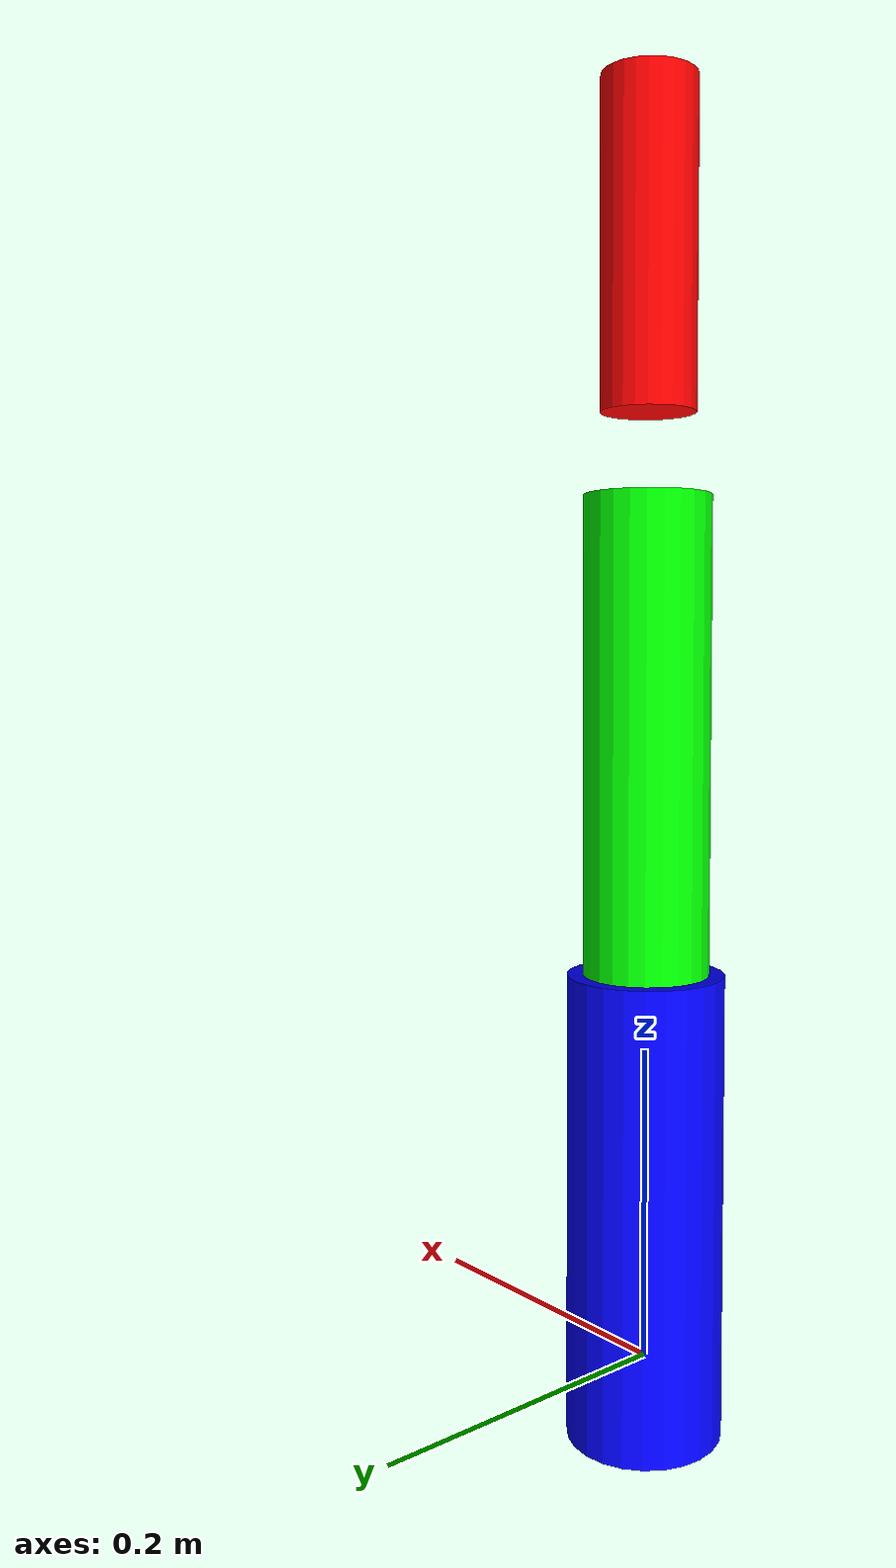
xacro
<?xml version="1.0"?>
<robot name="puma_3dof" xmlns:xacro="http://ros.org/wiki/xacro">

    <!-- COLOR -->
    <material name="green">
        <color rgba="0 1 0 1" />
    </material>

    <material name="blue">
        <color rgba="0 0 1 1"/>
    </material>

    <material name="red">
        <color rgba="1 0 0 1"/>
    </material>

    <!-- 기본 베이스 링크 -->
    <link name="base_link"/>

    <!-- Shoulder Joint -->
    <joint name="joint1" type="revolute">
        <parent link="base_link"/>
        <child link="link1"/>
        <origin xyz="0 0 0.1" rpy="0 0 0"/>
        <axis xyz="0 0 1"/>
        <limit effort="10.0" lower="-1.57" upper="1.57" velocity="1.0"/>
    </joint>
    <link name="link1">
        <visual>
            <geometry>
                <cylinder radius="0.05" length="0.3"/>
            </geometry>
            <material name="blue"/>
        </visual>
    </link>

    <!-- Elbow Joint -->
    <joint name="joint2" type="revolute">
        <parent link="link1"/>
        <child link="link2"/>
        <origin xyz="0 0 0.3" rpy="0 0 0"/>
        <axis xyz="0 1 0"/>
        <limit effort="10.0" lower="-1.57" upper="1.57" velocity="1.0"/>
    </joint>
    <link name="link2">
        <visual>
            <geometry>
                <cylinder radius="0.04" length="0.3"/>
            </geometry>
            <material name="green"/>
        </visual>
    </link>

    <!-- Wrist Joint -->
    <joint name="joint3" type="revolute">
        <parent link="link2"/>
        <child link="link3"/>
        <origin xyz="0 0 0.3" rpy="0 0 0"/>
        <axis xyz="1 0 0"/>
        <limit effort="10.0" lower="-1.57" upper="1.57" velocity="1.0"/>
    </joint>
    <link name="link3">
        <visual>
            <geometry>
                <cylinder radius="0.03" length="0.2"/>
            </geometry>
            <material name="red"/>
        </visual>
    </link>

</robot>
